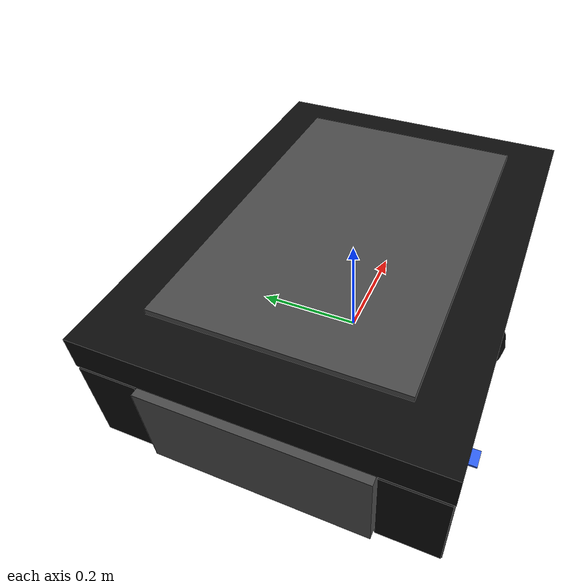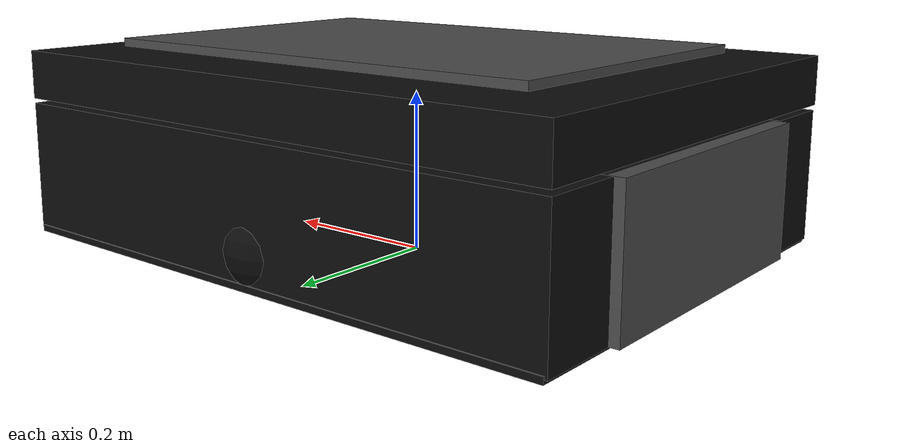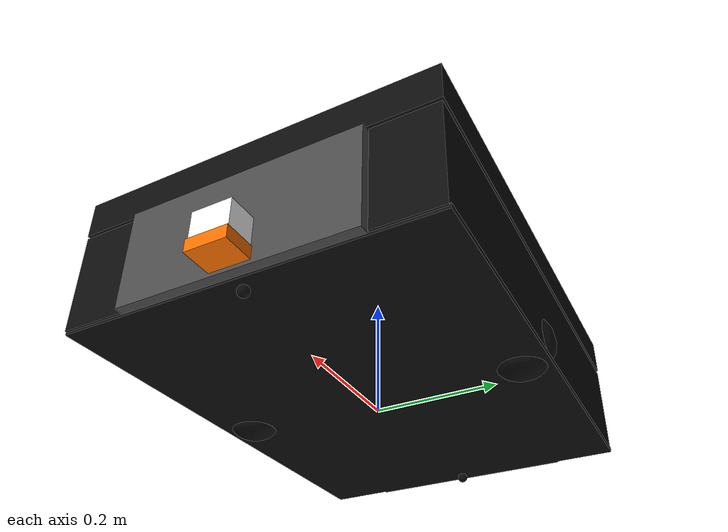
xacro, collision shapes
<?xml version="1.0"?>
<robot xmlns:xacro="http://www.ros.org/wiki/xacro" name="logic_robot">

    <xacro:include filename="common_prob.urdf.xacro"/>
    <xacro:include filename="chassis.urdf.xacro"/>
    <xacro:include filename="wheels_mobile_robot.urdf.xacro"/>
    <xacro:include filename="sensors.urdf.xacro"/>
    <xacro:include filename="igin_gz.urdf.xacro" />
    <xacro:include filename="ros2_control.urdf.xacro" />

</robot>

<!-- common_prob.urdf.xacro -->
<robot xmlns:xacro="http://www.ros.org/wiki/xacro">

    <material name="Blue_body">
        <color rgba="0.39 0.58 0.93 1"/>
    </material>

    <material name="Grey_body">
        <color rgba="0.3 0.3 0.3 1"/>
    </material>

    <material name="Blue_tech">
        <color rgba="0.2 0.4 1 1"/>
    </material>

    <material name="Black_wheels">
        <color rgba="0.05 0.05 0.05 1"/>
    </material>

    <material name="white">
        <color rgba="1.0 1.0 1.0 1.0"/>
    </material>

    <material name="Orange_body">
        <color rgba="1.0 0.45 0.0 1.0"/>
    </material>

    <xacro:macro name="box_inertia" params="m l h w xyz rpy">
        <inertial>
            <origin xyz="${xyz}" rpy="${rpy}"/>
            <mass value="${m}"/>
            <inertia ixx="${(m/12) * (w*w + h*h)}" ixy="0.0" ixz="0.0"
                     iyy="${(m/12) * (l*l + h*h)}" iyz="0.0"
                     izz="${(m/12) * (l*l + w*w)}"/>
    </inertial>
    </xacro:macro>

    <xacro:macro name="cylinder_inertia" params="m l r xyz rpy">
        <inertial>
            <origin xyz="${xyz}" rpy="${rpy}"/>
            <mass value="${m}"/>
            <inertia ixx="${(m/12) * (3*r*r + l*l)}" ixy="0.0" ixz="0.0"
                     iyy="${(m/12) * (3*r*r + l*l)}" iyz="0.0"
                     izz="${(m/2)  * (r*r)}"/>
        </inertial>
    </xacro:macro>

    <xacro:macro name="sphere_inertial" params="m r xyz rpy">
        <inertial>
            <origin xyz="${xyz}" rpy="${rpy}"/>
            <mass value="${m}"/>
            <inertia ixx="${(2.0/5.0) * (m*r*r)}" ixy="0.0" ixz="0.0"
                     iyy="${(2.0/5.0) * (m*r*r)}" iyz="0.0"
                     izz="${(2.0/5.0) * (m*r*r)}"/>
        </inertial>

    </xacro:macro>

</robot>

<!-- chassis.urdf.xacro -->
<robot xmlns:xacro="http://www.ros.org/wiki/xacro">

    <link name="base_footprint">
        <origin xyz="0.0 0.0 0.0" rpy="0.0 0.0 0.0"/>
    </link>

    <link name="base_link">
        <visual>
            <origin xyz="0 0 0" rpy="0 0 0" />
            <geometry>
                <mesh filename="package://robot_description/meshes/base_link.STL" />
            </geometry>
            <material name="Black_wheels"/>
        </visual>
        <collision>
            <origin xyz="0 0 0" rpy="0 0 0" />
            <geometry>
                <box size="0.767 0.5776 0.008"/>
            </geometry>
        </collision>
        <xacro:box_inertia m="10.0" l="0.767" h="0.005" w="0.5776"
                           xyz="0 0 0" rpy="0 0 0" />
    </link>

    <link name="front_side_link">
        <visual>
            <origin xyz="0 0 0" rpy="1.5708 0 -1.5708" />
            <geometry>
                <mesh filename="package://robot_description/meshes/FRONTFACE.STL"/>
            </geometry>
            <material name="Grey_body"/>
        </visual>
        <collision>
            <origin xyz="0 0 0.080706" rpy="1.5708 0 -1.5708" />
            <geometry>
                <box size="0.37 0.161412 0.02"/>
            </geometry>
        </collision>
        <xacro:box_inertia m="0.943263635545501" w="0.161412" h="0.02" l="0.37"
                           xyz="0 0 0.080706" rpy="1.5708 0 -1.5708" />
    </link>

    <link name="back_side_link">
        <visual>
            <origin xyz="0 0 0" rpy="-1.5708 0 1.5708" />
            <geometry>
                <mesh filename="package://robot_description/meshes/BACKFACE.STL"/>
            </geometry>
            <material name="Grey_body"/>
        </visual>
        <collision>
            <origin xyz="0 0 0.080706" rpy="-1.5708 0 1.5708" />
            <geometry>
                <box size="0.37 0.161412 0.02"/>
            </geometry>
        </collision>
        <xacro:box_inertia m="0.943263635545501" w="0.161412" h="0.02" l="0.37"
                           xyz="0 0 0.080706" rpy="1.5708 0 -1.5708" />
    </link>

    <link name="right_side_link">
        <visual>
            <origin xyz="0 0 0" rpy="1.5708 0 0" />
            <geometry>
                <mesh filename="package://robot_description/meshes/RIGHTSIDE.STL"/>
            </geometry>
            <material name="Black_wheels"/>
        </visual>
        <collision>
            <origin xyz="0 0.053 -0.08" rpy="1.5708 0 0" />
            <geometry>
                <box size="0.773425 0.161412 0.1"/>
            </geometry>
        </collision>
        <xacro:box_inertia m="2.59245784828295" w="0.161412" l="0.773425" h="0.1"
                           xyz="0 0.05 -0.080706" rpy="1.5708 0 0" />
    </link>

    <link name="left_side_link">
        <visual>
            <origin xyz="0 0 0" rpy="1.5708 0 3.1416" />
            <geometry>
                <mesh filename="package://robot_description/meshes/LEFTSIDE.STL"/>
            </geometry>
            <material name="Black_wheels"/>
        </visual>
        <collision>
            <origin xyz="0 -0.053 -0.08" rpy="1.5708 0 0" />
            <geometry>
                <box size="0.773425 0.161412 0.1"/>
            </geometry>
        </collision>
        <xacro:box_inertia m="2.59245784828295" w="0.161412" l="0.773425" h="0.1"
                           xyz="0 -0.05 -0.080706" rpy="1.5708 0 0" />
    </link>

    <link name="flange_link">
        <visual>
            <origin xyz="0 0 0" rpy="1.5708 0 0" />
            <geometry>
                <mesh filename="package://robot_description/meshes/FLANGE.STL"/>
            </geometry>
            <material name="Black_wheels"/>
        </visual>
        <collision>
            <origin xyz="0 0 0.035" rpy="1.5708 0 0" />
            <geometry>
                <box size="0.773425 0.06 0.578"/>
            </geometry>
        </collision>
        <xacro:box_inertia m="4.55743149884064" w="0.06" l="0.773425" h="0.578"
                           xyz="0 0 0.035" rpy="1.5708 0 0" />
    </link>

    <link name="top_lift_link">
        <visual>
            <origin xyz="0 0 0" rpy="1.5707963267949 0 3.14159265358979" />
            <geometry>
                <mesh filename="package://robot_description/meshes/TOPBASE.STL"/>
            </geometry>
            <material name="Grey_body"/>
        </visual>
        <collision>
            <origin xyz="0 0 0" rpy="1.5707963267949 0 3.14159265358979" />
            <geometry>
                <box size="0.6123 0.01 0.4123"/>
            </geometry>
        </collision>
        <xacro:box_inertia m="2.0" w="0.01" l="0.6123" h="0.4123"
                           xyz="0 0 0" rpy="1.5707963267949 0 3.14159265358979" />
    </link>

    <link name="lidarbase_link">
        <visual>
            <origin xyz="0 0 0" rpy="0 0 0" />
            <geometry>
                <mesh filename="package://robot_description/meshes/liDAR_SPACER.STL"/>
            </geometry>
            <material name="Orange_body"/>
        </visual>
        <collision>
            <origin xyz="-0.0655 -0.032 -0.01" rpy="0 0 0" />
            <geometry>
                <box size="0.131 0.064 0.02"/>
            </geometry>
        </collision>
        <xacro:box_inertia m="0.044971" l="0.131" w="0.064" h="0.02"
                           xyz="-0.0655 -0.032 -0.01" rpy="0 0 0" />
    </link>

    <joint name="base_base_joint" type="fixed">
        <parent link="base_footprint"/>
        <child link="base_link"/>
        <origin xyz="0.0 0.0 0.02" rpy="0.0 0.0 0.0"/>
    </joint>

    <joint name="base_front_joint" type="fixed">
        <parent link="base_link"/>
        <child link="front_side_link"/>
        <origin xyz="0.388 0.0 0.0" rpy="0.0 0.0 0.0"/>
    </joint>

    <joint name="base_back_joint" type="fixed">
        <parent link="base_link"/>
        <child link="back_side_link"/>
        <origin xyz="-0.388 0.0 0.0" rpy="0.0 0.0 0.0"/>
    </joint>

    <joint name="base_right_joint" type="fixed">
        <parent link="base_link"/>
        <child link="right_side_link"/>
        <origin xyz=" 0.0 -0.2902 0.161" rpy="0.0 0.0 0.0"/>
    </joint>

    <joint name="base_left_joint" type="fixed">
        <parent link="base_link"/>
        <child link="left_side_link"/>
        <origin xyz=" 0.0 0.2902 0.161" rpy="0.0 0.0 0.0"/>
    </joint>

    <joint name="base_flange_joint" type="fixed">
        <parent link="base_link"/>
        <child link="flange_link"/>
        <origin xyz="-0.00073426 -0.00062835 0.163" rpy="0.0 0.0 0.0"/>
    </joint>

    <joint name="base_top_joint" type="prismatic">
        <parent link="base_link"/>
        <child link="top_lift_link"/>
        <axis xyz="0 0 1"/>
        <limit lower="-0.01" upper="0.154" velocity="0.1" effort="5000.0"/>
        <dynamics damping="5.0" friction="1.0"/>
        <origin xyz="0.0 0.0 0.2374" rpy="0.0 0.0 0.0"/>
    </joint>

    <joint name="base_lidarbase_joint" type="fixed">
        <parent link="base_link"/>
        <child link="lidarbase_link"/>
        <origin xyz="0.44615 0.0325 0.026" rpy="0.0 0.0 0.0"/>
    </joint>

</robot>

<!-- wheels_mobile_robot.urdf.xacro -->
<robot xmlns:xacro="http://www.ros.org/wiki/xacro">

    <link name="right_wheel_link">
        <visual>
            <origin xyz="0 0 0" rpy="0 0 0" />
            <geometry>
                <mesh filename="package://robot_description/meshes/WHEELRIGHT.STL" />
            </geometry>
            <material name="Black_wheels"/>
        </visual>
        <collision>
            <origin xyz="0 0 0" rpy="0 0 0" />
            <geometry>
                <sphere radius="0.055"/>
            </geometry>
        </collision>
        <inertial>
            <mass value="0.27052" />
            <origin xyz="0 0 0" />
            <inertia ixx="0.00020379" ixy="1.8231E-022" ixz="-1.0447E-037"
                     iyy="0.00036168" iyz="6.2575E-022"
                     izz="0.00020379" />
        </inertial>
    </link>

    <link name="left_wheel_link">
        <visual>
            <origin xyz="0 0 0" rpy="0 0 0" />
            <geometry>
                <mesh filename="package://robot_description/meshes/WHEELRIGHT.STL" />
            </geometry>
            <material name="Black_wheels"/>
        </visual>
        <collision>
            <origin xyz="0 0 0" rpy="0 0 0" />
            <geometry>
                <sphere radius="0.055"/>
            </geometry>
        </collision>
        <inertial>
            <mass value="0.27052" />
            <origin xyz="0 0 0" />
            <inertia ixx="0.00020379" ixy="1.8231E-022" ixz="-1.0447E-037"
                     iyy="0.00036168" iyz="6.2575E-022"
                     izz="0.00020379" />
        </inertial>
    </link>

    <link name="front_caster_wheel_link">
        <visual>
            <origin xyz="0 0 0" rpy="0 0 0" />
            <geometry>
                <sphere radius="0.009"/>
            </geometry>
            <material name="Black_wheels"/>
        </visual>
        <collision>
            <origin xyz="0 0 0" rpy="0 0 0" />
            <geometry>
                <sphere radius="0.009"/>
            </geometry>
        </collision>
        <xacro:sphere_inertial m="0.05" r="${0.009}"
                              xyz="0 0 0" rpy="0 0 0"  />
    </link>

    <link name="back_caster_wheel_link">
        <visual>
            <origin xyz="0 0 0" rpy="0 0 0" />
            <geometry>
                <sphere radius="0.01"/>
            </geometry>
            <material name="Black_wheels"/>
        </visual>
        <collision>
            <origin xyz="0 0 0" rpy="0 0 0" />
            <geometry>
                <sphere radius="0.009"/>
            </geometry>
        </collision>
        <xacro:sphere_inertial m="0.05" r="${0.009}"
                              xyz="0 0 0" rpy="0 0 0"  />
    </link>

    <joint name="base_right_wheel_joint" type="continuous">
        <parent link="base_link"/>
        <child link="right_wheel_link"/>
        <axis xyz="0 1 0"/>
        <origin xyz="0.00031675 -0.243 0.035" rpy="0 0 0"/>
    </joint>

    <joint name="base_left_wheel_joint" type="continuous">
        <parent link="base_link"/>
        <child link="left_wheel_link"/>
        <axis xyz="0 1 0"/>
        <origin xyz="0.00031675 0.243 0.035" rpy="0 0 0"/>
    </joint>

    <joint name="base_caster_front_joint" type="fixed">
        <parent link="base_link"/>
        <child link="front_caster_wheel_link"/>
        <origin xyz="0.365 0.0 -0.0105" rpy="0.0 0.0 0.0"/>
    </joint>

    <joint name="base_caster_back_joint" type="fixed">
        <parent link="base_link"/>
        <child link="back_caster_wheel_link"/>
        <origin xyz="-0.365 0.0 -0.0105" rpy="0.0 0.0 0.0"/>
    </joint>

</robot>

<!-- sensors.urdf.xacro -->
<robot xmlns:xacro="http://www.ros.org/wiki/xacro">

    <link name="imu_link">
        <visual>
            <origin xyz="0 0 0" rpy="0 0 0" />
            <geometry>
                <box size="0.03 0.02 0.01"/>
            </geometry>
            <material name="Blue_tech"/>
        </visual>
        <collision>
            <origin xyz="0 0 0" rpy="0 0 0" />
            <geometry>
                <box size="0.03 0.02 0.01"/>
            </geometry>
        </collision>
        <inertial>
            <mass value="0.05" />
            <origin xyz="0 0 0" />
            <inertia ixx="1.0" ixy="0.0" ixz="0.0"
                     iyy="1.0" iyz="0.0"
                     izz="1.0" />
        </inertial>
    </link>

    <link name="Camera_link">
        <visual>
            <origin xyz="0 0 0" rpy="1.5708 -0.87266 0" />
            <geometry>
                <mesh filename="package://robot_description/meshes/CAMRAS.STL" />
            </geometry>
            <material name="Blue_tech"/>
        </visual>
        <collision>
            <origin xyz="0 0 0" rpy="0 0 0" />
            <geometry>
            <!-- Changed from 0.0 0.0 0.0 to 0.001 0.001 0.001 -->
                <box size="0.001 0.001 0.001"/>
            </geometry>
        </collision>
        <inertial>
            <mass value="0.00661422961856379" />
            <origin xyz="0 0 0" />
            <inertia ixx="0.00000026238959561215" ixy="5.1351372427292E-021" ixz="8.28770144570259E-022"
                     iyy="0.00000140030188192852" iyz="-2.48138686021216E-023"
                     izz="0.00000141481758097034" />
        </inertial>
    </link>

    <link name="base_laser">
        <visual>
            <origin xyz="0 0 0" rpy="1.5708 0 -1.5708" />
            <geometry>
                <mesh filename="package://robot_description/meshes/LIDAR.STL" />
            </geometry>
            <material name="white"/>
        </visual>
        <collision>
            <origin xyz="0 0 0.01" rpy="1.5708 0 -1.5708" />
            <geometry>
                <box size="0.0614 0.045 0.0614" />
            </geometry>
        </collision>
        <xacro:box_inertia m="0.0509760361388544" l="0.0614" w="0.045" h="0.0614"
                           xyz="0 0 0.01" rpy="1.5708 0 -1.5708" />
    </link>

    <link name="ultra1_link">
        <visual>
            <origin xyz="0 0 0" rpy="0 0 -1.570796327" />
            <geometry>
                <mesh filename="package://robot_description/meshes/ULTRASONIC1.STL" />
            </geometry>
            <material name="Blue_tech"/>
        </visual>
        <collision>
            <origin xyz="0 0 0" rpy="0 0 0" />
            <geometry>
            <!-- Changed from 0.0 0.0 0.0 to 0.001 0.001 0.001 -->
                <box size="0.001 0.001 0.001"/>
            </geometry>
        </collision>
        <inertial>
            <mass value="0.00661422961856379" />
            <origin xyz="0 0 0" />
            <inertia ixx="0.00000026238959561215" ixy="5.1351372427292E-021" ixz="8.28770144570259E-022"
                     iyy="0.00000140030188192852" iyz="-2.48138686021216E-023"
                     izz="0.00000141481758097034" />
        </inertial>
    </link>

    <link name="ultra2_link">
        <visual>
            <origin xyz="0 0 0" rpy="0 0 2.35619449019235" />
            <geometry>
                <mesh filename="package://robot_description/meshes/ULTRASONIC1.STL" />
            </geometry>
            <material name="Blue_tech"/>
        </visual>
        <collision>
            <origin xyz="0 0 0" rpy="0 0 0" />
            <geometry>
            <!-- Changed from 0.0 0.0 0.0 to 0.001 0.001 0.001 -->
                <box size="0.001 0.001 0.001"/>
            </geometry>
        </collision>
        <inertial>
            <mass value="0.00661422961856379" />
            <origin xyz="0 0 0" />
            <inertia ixx="0.00000026238959561215" ixy="5.1351372427292E-021" ixz="8.28770144570259E-022"
                     iyy="0.00000140030188192852" iyz="-2.48138686021216E-023"
                     izz="0.00000141481758097034" />
        </inertial>
    </link>

    <link name="ultra3_link">
        <visual>
            <origin xyz="0 0 0" rpy="3.14159265358979 0 -2.35619449019235" />
            <geometry>
                <mesh filename="package://robot_description/meshes/ULTRASONIC1.STL" />
            </geometry>
            <material name="Blue_tech"/>
        </visual>
        <collision>
            <origin xyz="0 0 0" rpy="0 0 0" />
            <geometry>
            <!-- Changed from 0.0 0.0 0.0 to 0.001 0.001 0.001 -->
                <box size="0.001 0.001 0.001"/>
            </geometry>
        </collision>
        <inertial>
            <mass value="0.00661422961856379" />
            <origin xyz="0 0 0" />
            <inertia ixx="0.00000026238959561215" ixy="5.1351372427292E-021" ixz="8.28770144570259E-022"
                     iyy="0.00000140030188192852" iyz="-2.48138686021216E-023"
                     izz="0.00000141481758097034" />
        </inertial>
    </link>

    <link name="ultra4_link">
        <visual>
            <origin xyz="0 0 0" rpy="0 0 -1.570796327" />
            <geometry>
                <mesh filename="package://robot_description/meshes/ULTRASONIC1.STL" />
            </geometry>
            <material name="Blue_tech"/>
        </visual>
        <collision>
            <origin xyz="0 0 0" rpy="0 0 0" />
            <geometry>
            <!-- Changed from 0.0 0.0 0.0 to 0.001 0.001 0.001 -->
                <box size="0.001 0.001 0.001"/>
            </geometry>
        </collision>
        <inertial>
            <mass value="0.00661422961856379" />
            <origin xyz="0 0 0" />
            <inertia ixx="0.00000026238959561215" ixy="5.1351372427292E-021" ixz="8.28770144570259E-022"
                     iyy="0.00000140030188192852" iyz="-2.48138686021216E-023"
                     izz="0.00000141481758097034" />
        </inertial>
    </link>

    <link name="proximity_sensor">
        <visual>
            <origin xyz="0 0 0" rpy="1.57 1.57 1.57" />
            <geometry>
                <box size="0.018 0.0255 0.0031" />
            </geometry>
            <material name="Blue_tech"/>
        </visual>
        <collision>
            <origin xyz="0 0 0" rpy="0 0 0" />
            <geometry>
                <box size="0.018 0.0255 0.0031" />
            </geometry>
        </collision>
        <inertial>
            <mass value="0.00661422961856379" />
            <origin xyz="0 0 0" />
            <inertia ixx="1.0" ixy="0.0" ixz="0.0" iyy="1.0" iyz="0.0" izz="1.0" />
        </inertial>
    </link>

    <joint name="base_camera_joint" type="fixed">
        <parent link="base_link"/>
        <child link="Camera_link"/>
        <origin xyz="0.35641 0.0 0.19554" rpy="0.0 0.0 0.0"/>
    </joint>

    <joint name="base_scan_joint" type="fixed">
        <parent link="base_link"/>
        <child link="base_laser"/>
        <origin xyz="0.412 0.0 0.038" rpy="0.0 0.0 0.0"/>
    </joint>

    <joint name="base_ultra1_joint" type="fixed">
        <parent link="base_link"/>
        <child link="ultra1_link"/>
        <origin xyz="0.344057611844581 0.245757611844575 0.122" rpy="0 0 0.785398163397444"/>
    </joint>

    <joint name="base_ultra2_joint" type="fixed">
        <parent link="base_link"/>
        <child link="ultra2_link"/>
        <origin xyz="-0.344057611844581 -0.245757611844575 0.122" rpy="0.0 0.0 0.0"/>
    </joint>

    <joint name="base_ultra3_joint" type="fixed">
        <parent link="base_link"/>
        <child link="ultra3_link"/>
        <origin xyz="-0.344057611844581 0.245757611844575 0.122" rpy="0.0 0.0 0.0"/>
    </joint>

    <joint name="base_ultra4_joint" type="fixed">
        <parent link="base_link"/>
        <child link="ultra4_link"/>
        <origin xyz="0.344057611844581 -0.245757611844575 0.122" rpy="0 0 -0.785398163397446"/>
    </joint>

    <joint name="base_imu_joint" type="fixed">
        <parent link="base_link"/>
        <child link="imu_link"/>
        <origin xyz="0.255 -0.1 0.025" rpy="0.0 0.0 0.0"/>
    </joint>

    <joint name="base_prox_joint" type="fixed">
        <parent link="right_side_link"/>
        <child link="proximity_sensor"/>
        <origin xyz="-0.3 -0.00305 -0.02" rpy="0.0 0.0 -1.57"/>
    </joint>

</robot>
